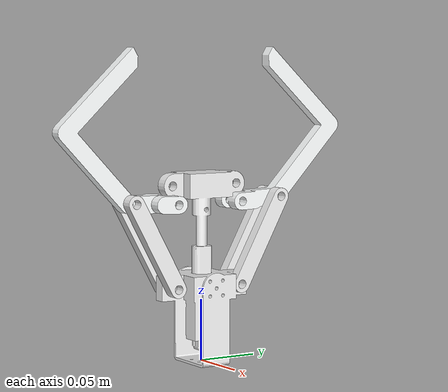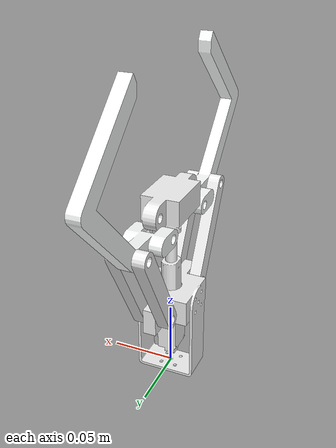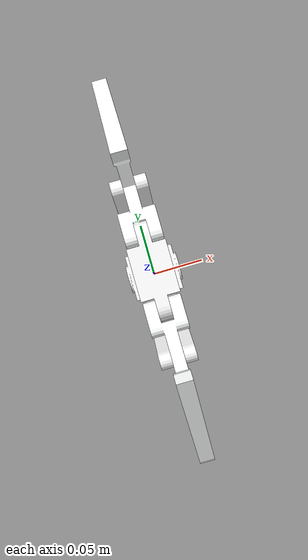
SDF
<?xml version="1.0" ?>
<sdf version='1.9'>
  <model name='gripper'>
    <link name='base_link'>
      <inertial>
        <pose>8.070362431764761e-07 -5.207427005557204e-05 0.06258751071610966 0 0 0</pose>
        <mass>0.1693945983431174</mass>
        <inertia>
          <ixx>0.0002671632782136991</ixx>
          <ixy>1.6830079778163361e-10</ixy>
          <ixz>4.5878217802596347e-09</ixz>
          <iyy>0.00027833873245733078</iyy>
          <iyz>-2.7955692006777592e-07</iyz>
          <izz>5.6386334931882222e-05</izz>
        </inertia>
      </inertial>
      <collision name='base_link_collision'>
        <pose>0 0 0 0 0 0</pose>
        <geometry>
          <mesh>
            <scale>1 1 1</scale>
            <uri>file://models/gripper/meshes/base_link.STL</uri>
          </mesh>
        </geometry>
      </collision>
      <collision name='base_link_fixed_joint_lump__actuactor_link_collision_1'>
        <pose>0 0 0.084786 1.5708 0 -1.5708</pose>
        <geometry>
          <mesh>
            <scale>1 1 1</scale>
            <uri>file://models/gripper/meshes/actuactor_link.STL</uri>
          </mesh>
        </geometry>
      </collision>
      <visual name='base_link_visual'>
        <pose>0 0 0 0 0 0</pose>
        <geometry>
          <mesh>
            <scale>1 1 1</scale>
            <uri>file://models/gripper/meshes/base_link.STL</uri>
          </mesh>
        </geometry>
        <material>
          <diffuse>0.941176 0.941176 0.941176 1</diffuse>
          <ambient>0.941176 0.941176 0.941176 1</ambient>
        </material>
      </visual>
      <visual name='base_link_fixed_joint_lump__actuactor_link_visual_1'>
        <pose>0 0 0.084786 1.5708 0 -1.5708</pose>
        <geometry>
          <mesh>
            <scale>1 1 1</scale>
            <uri>file://models/gripper/meshes/actuactor_link.STL</uri>
          </mesh>
        </geometry>
        <material>
          <diffuse>0.941176 0.941176 0.941176 1</diffuse>
          <ambient>0.941176 0.941176 0.941176 1</ambient>
        </material>
      </visual>
    </link>
    <joint name='arm_1_joint' type='revolute'>
      <pose relative_to='base_link'>-0.005000275850289393 -0.02895298163315656 0.1309309816336632 -1.570799998373345 -0.02975499999979915 -1.570800109328485</pose>
      <parent>base_link</parent>
      <child>arm_1_link</child>
      <axis>
        <xyz>0 0 1</xyz>
        <limit>
          <lower>-3.1415</lower>
          <upper>3.1415</upper>
		  <effort>100</effort>
          <velocity>5.0</velocity>
        </limit>
		<dynamics>
          <damping>0.1</damping>
          <friction>0.01</friction>
        </dynamics>
      </axis>
    </joint>
    <link name='arm_1_link'>
      <pose relative_to='arm_1_joint'>0 0 0 0 0 0</pose>
      <inertial>
        <pose>0.0521330633718729 -0.0399533991816216 0.005 0 0 0</pose>
        <mass>0.032917762903905301</mass>
        <inertia>
          <ixx>5.1601476098587301e-05</ixx>
          <ixy>2.0651566003637601e-05</ixy>
          <ixz>8.5431890557245601e-22</ixz>
          <iyy>2.9327192345490801e-05</iyy>
          <iyz>-7.9211155629063099e-22</iyz>
          <izz>7.9157001489007202e-05</izz>
        </inertia>
      </inertial>
      <collision name='arm_1_link_collision'>
        <pose>0 0 0 0 0 0</pose>
        <geometry>
          <mesh>
            <scale>1 1 1</scale>
            <uri>file://models/gripper/meshes/arm_1_link.STL</uri>
          </mesh>
        </geometry>
      </collision>
      <visual name='arm_1_link_visual'>
        <pose>0 0 0 0 0 0</pose>
        <geometry>
          <mesh>
            <scale>1 1 1</scale>
            <uri>file://models/gripper/meshes/arm_1_link.STL</uri>
          </mesh>
        </geometry>
        <material>
          <diffuse>0.990196 1 1 1</diffuse>
          <ambient>0.990196 1 1 1</ambient>
        </material>
      </visual>
    </link>
    <joint name='arm_2_joint' type='revolute'>
      <pose relative_to='base_link'>0.004999936850190404 0.02895298163440177 0.1309310183657142 -1.570800001630776 -0.02979265358959214 1.57079276305671</pose>
      <parent>base_link</parent>
      <child>arm_2_link</child>
      <axis>
        <xyz>0 0 1</xyz>
        <limit>
          <lower>-3.1415</lower>
          <upper>3.1415</upper>
		  <effort>100</effort>
          <velocity>5.0</velocity>
        </limit>
		<dynamics>
          <damping>0.1</damping>
          <friction>0.01</friction>
        </dynamics>
      </axis>
    </joint>
    <link name='arm_2_link'>
      <pose relative_to='arm_2_joint'>0 0 0 0 0 0</pose>
      <inertial>
        <pose>0.0521330633718464 -0.0399533991816367 0.005 0 0 0</pose>
        <mass>0.032917762903905301</mass>
        <inertia>
          <ixx>5.1601476098587301e-05</ixx>
          <ixy>2.0651566003637699e-05</ixy>
          <ixz>-2.0836617093379299e-21</ixz>
          <iyy>2.9327192345490801e-05</iyy>
          <iyz>5.8724305266388999e-21</iyz>
          <izz>7.9157001489007202e-05</izz>
        </inertia>
      </inertial>
      <collision name='arm_2_link_collision'>
        <pose>0 0 0 0 0 0</pose>
        <geometry>
          <mesh>
            <scale>1 1 1</scale>
            <uri>file://models/gripper/meshes/arm_2_link.STL</uri>
          </mesh>
        </geometry>
      </collision>
      <visual name='arm_2_link_visual'>
        <pose>0 0 0 0 0 0</pose>
        <geometry>
          <mesh>
            <scale>1 1 1</scale>
            <uri>file://models/gripper/meshes/arm_2_link.STL</uri>
          </mesh>
        </geometry>
        <material>
          <diffuse>0.990196 1 1 1</diffuse>
          <ambient>0.990196 1 1 1</ambient>
        </material>
      </visual>
    </link>
    <joint name='shaft_1_joint' type='revolute'>
      <pose relative_to='base_link'>0 -0.03 0.061858 1.5708 -0.04116700000000018 1.5708</pose>
      <parent>base_link</parent>
      <child>shaft_1_link</child>
      <axis>
        <xyz>0 0 1</xyz>
        <limit>
          <lower>0</lower>
          <upper>0</upper>
          <effort>0</effort>
          <velocity>0</velocity>
        </limit>
        <dynamics>
          <spring_reference>0</spring_reference>
          <spring_stiffness>0</spring_stiffness>
        </dynamics>
      </axis>
    </joint>
    <link name='shaft_1_link'>
      <pose relative_to='shaft_1_joint'>0 0 0 0 0 0</pose>
      <inertial>
        <pose>-0.0185483490157523 0.0354395083034431 2.99498299918544e-16 0 0 0</pose>
        <mass>0.022526034186230001</mass>
        <inertia>
          <ixx>1.12936526709408e-05</ixx>
          <ixy>5.6246333880814904e-06</ixy>
          <ixz>-8.7721201958664707e-22</ixz>
          <iyy>3.4907386333811201e-06</iyy>
          <iyz>1.5435342069570399e-21</iyz>
          <izz>1.4445562206770701e-05</izz>
        </inertia>
      </inertial>
      <collision name='shaft_1_link_collision'>
        <pose>0 0 0 0 0 0</pose>
        <geometry>
          <mesh>
            <scale>1 1 1</scale>
            <uri>file://models/gripper/meshes/shaft_1_link.STL</uri>
          </mesh>
        </geometry>
      </collision>
      <visual name='shaft_1_link_visual'>
        <pose>0 0 0 0 0 0</pose>
        <geometry>
          <mesh>
            <scale>1 1 1</scale>
            <uri>file://models/gripper/meshes/shaft_1_link.STL</uri>
          </mesh>
        </geometry>
        <material>
          <diffuse>0.941176 0.941176 0.941176 1</diffuse>
          <ambient>0.941176 0.941176 0.941176 1</ambient>
        </material>
      </visual>
    </link>
    <joint name='shaft_2_joint' type='revolute'>
      <pose relative_to='base_link'>0 0.03 0.061858 1.5708 0.04116700000000018 1.5708</pose>
      <parent>base_link</parent>
      <child>shaft_2_link</child>
      <axis>
        <xyz>0 0 1</xyz>
        <limit>
          <lower>0</lower>
          <upper>0</upper>
          <effort>0</effort>
          <velocity>0</velocity>
        </limit>
        <dynamics>
          <spring_reference>0</spring_reference>
          <spring_stiffness>0</spring_stiffness>
        </dynamics>
      </axis>
    </joint>
    <link name='shaft_2_link'>
      <pose relative_to='shaft_2_joint'>0 0 0 0 0 0</pose>
      <inertial>
        <pose>0.0185483490157517 0.0354395083034417 2.92425178921861e-16 0 0 0</pose>
        <mass>0.022526034186230001</mass>
        <inertia>
          <ixx>1.12936526709407e-05</ixx>
          <ixy>-5.6246333880815099e-06</ixy>
          <ixz>-4.8017551442953198e-22</ixz>
          <iyy>3.4907386333811701e-06</iyy>
          <iyz>-1.06899453632766e-21</iyz>
          <izz>1.4445562206770701e-05</izz>
        </inertia>
      </inertial>
      <collision name='shaft_2_link_collision'>
        <pose>0 0 0 0 0 0</pose>
        <geometry>
          <mesh>
            <scale>1 1 1</scale>
            <uri>file://models/gripper/meshes/shaft_2_link.STL</uri>
          </mesh>
        </geometry>
      </collision>
      <visual name='shaft_2_link_visual'>
        <pose>0 0 0 0 0 0</pose>
        <geometry>
          <mesh>
            <scale>1 1 1</scale>
            <uri>file://models/gripper/meshes/shaft_2_link.STL</uri>
          </mesh>
        </geometry>
        <material>
          <diffuse>0.941176 0.941176 0.941176 1</diffuse>
          <ambient>0.941176 0.941176 0.941176 1</ambient>
        </material>
      </visual>
    </link>
    <frame name='actuactor_joint' attached_to='base_link'>
      <pose>0 0 0.084786 1.5708 -0 -1.5708</pose>
    </frame>
    <frame name='actuactor_link' attached_to='actuactor_joint'/>

    <plugin
      filename="libignition-gazebo-joint-position-controller-system.so"
      name="ignition::gazebo::systems::JointPositionController">
      <joint_name>arm_1_joint</joint_name>
      <topic>/arm_1_joint/position_cmd</topic>
      <p_gain>100</p_gain>
      <i_gain>0.1</i_gain>
      <d_gain>0.01</d_gain>
      <i_max>1</i_max>
      <i_min>-1</i_min>
      <cmd_max>1000</cmd_max>
      <cmd_min>-1000</cmd_min>
    </plugin>

    <plugin
      filename="libignition-gazebo-joint-position-controller-system.so"
      name="ignition::gazebo::systems::JointPositionController">
      <joint_name>arm_2_joint</joint_name>
      <topic>/arm_2_joint/position_cmd</topic>
      <p_gain>100</p_gain>
      <i_gain>0.1</i_gain>
      <d_gain>0.01</d_gain>
      <i_max>1</i_max>
      <i_min>-1</i_min>
      <cmd_max>1000</cmd_max>
      <cmd_min>-1000</cmd_min>
    </plugin>

    <plugin
  name="ignition::gazebo::systems::JointStatePublisher"
  filename="libignition-gazebo-joint-state-publisher-system.so"/>

  </model>
</sdf>
